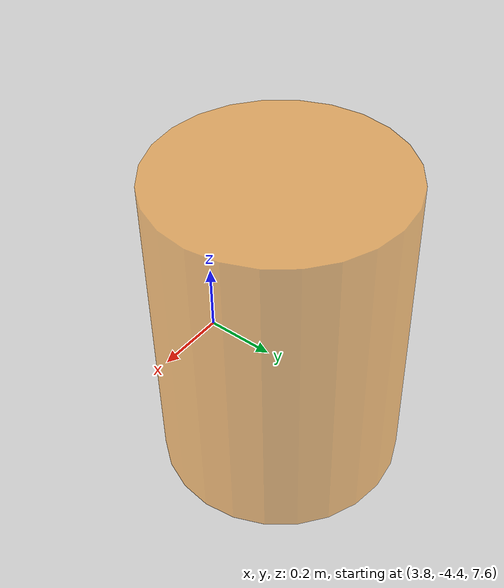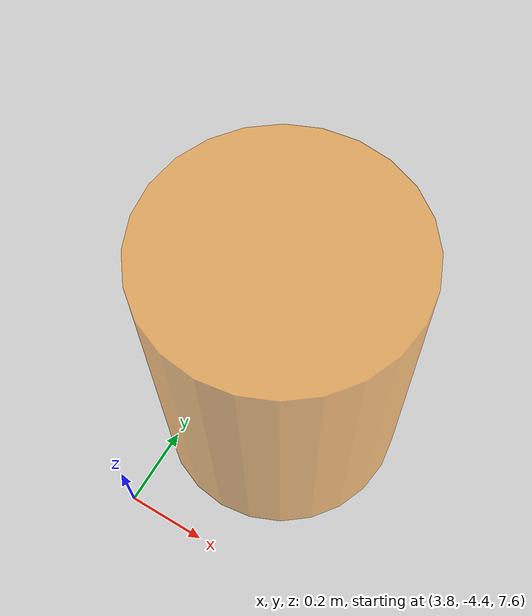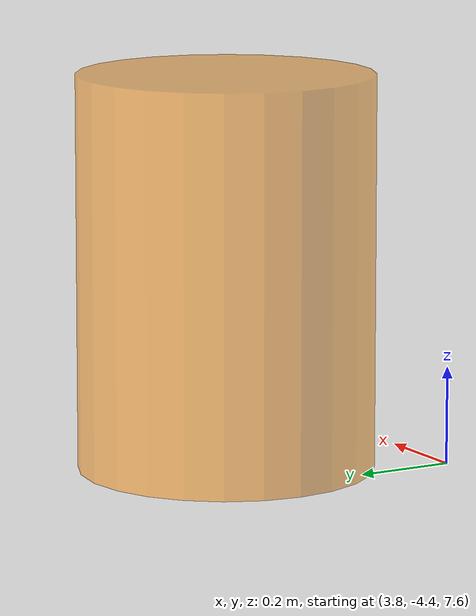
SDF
<?xml version="1.0"?>
<sdf version="1.7">
    <model name="cylinder">
      <pose>4 -4 8 0 0 0</pose>
      <link name="cylinder_link">
        <inertial>
          <inertia>
            <ixx>0.01</ixx>
            <iyy>0.01</iyy>
            <izz>0.01</izz>
          </inertia>
          <mass>0.8</mass>
        </inertial>
        <collision name="collision">
          <geometry>
          	<cylinder>
            		<radius>0.3</radius>
            		<length>0.8</length>
          	</cylinder>
          </geometry>
          <drake:proximity_properties>
            <drake:mu_dynamic>0.4</drake:mu_dynamic>
            <drake:mu_static>0.4</drake:mu_static>
            <drake:mesh_resolution_hint>0.5</drake:mesh_resolution_hint>
            <drake:hydroelastic_modulus>1e7</drake:hydroelastic_modulus>
            <drake:hunt_crossley_dissipation>1.25</drake:hunt_crossley_dissipation>
            <drake:compliant_hydroelastic/>
          </drake:proximity_properties>
        </collision>
        <visual name="visual">
          <geometry>
          	<cylinder>
            		<radius>0.3</radius>
            		<length>0.8</length>
          	</cylinder>
          </geometry>
          <material>
            <diffuse>1.0 0.55 0.0 0.5</diffuse>
          </material>
        </visual>
      </link>
    </model>
</sdf>
